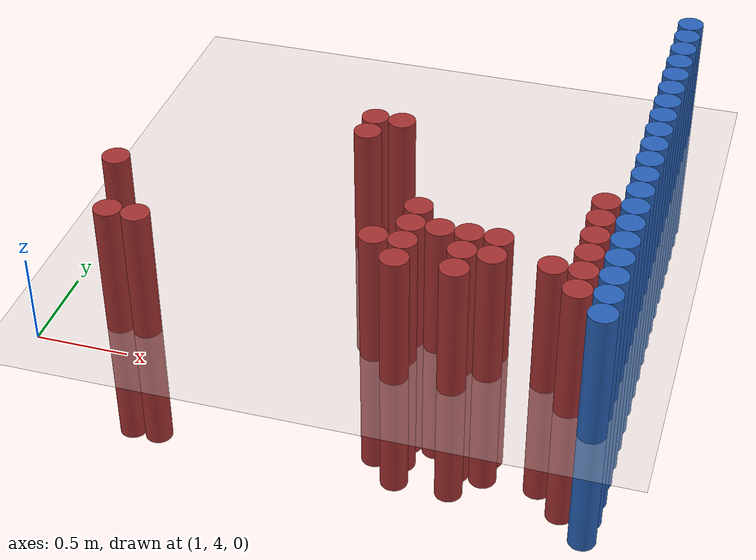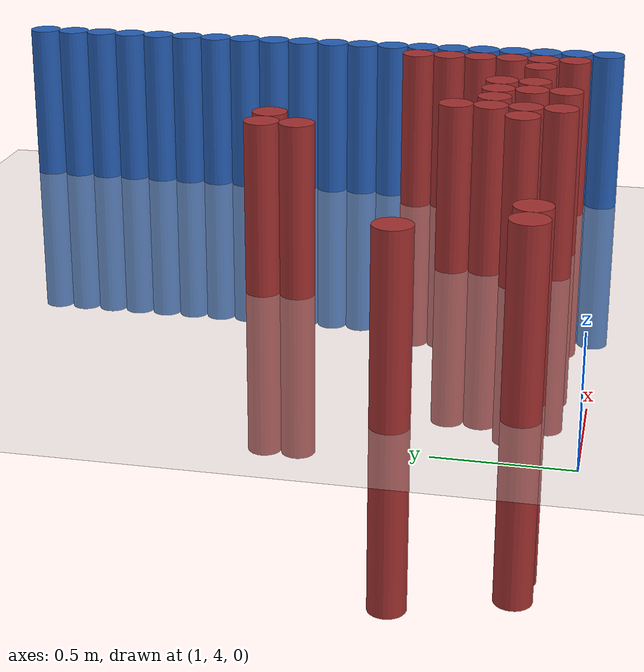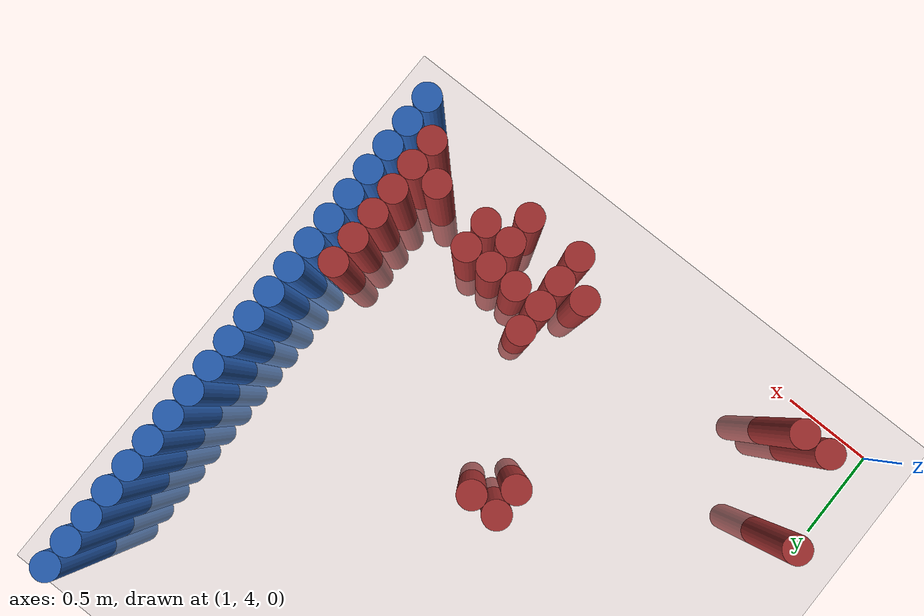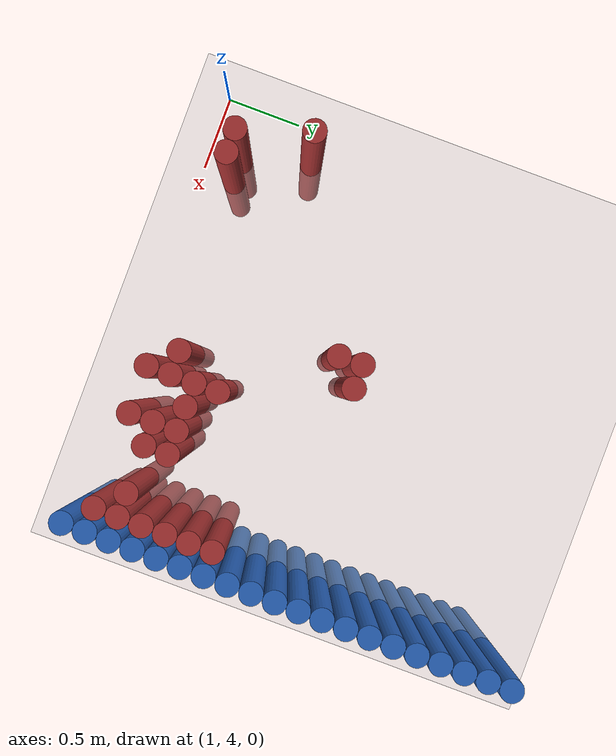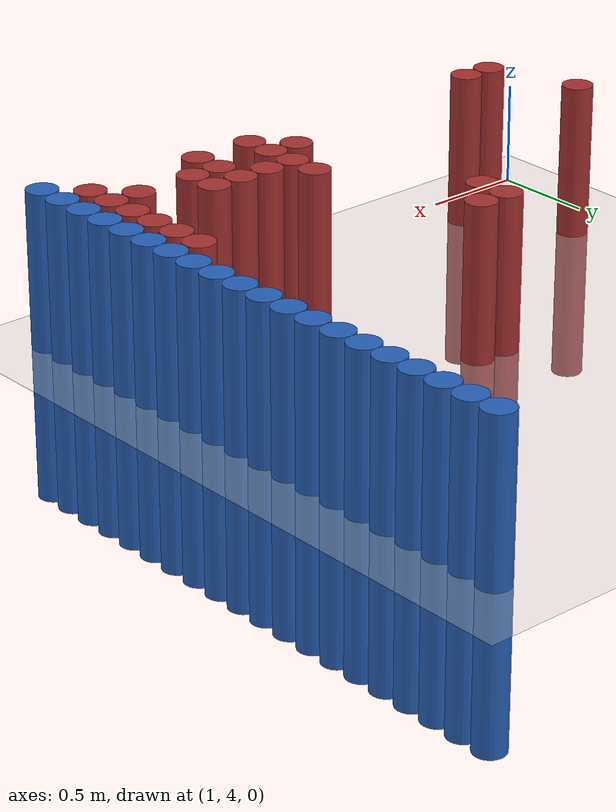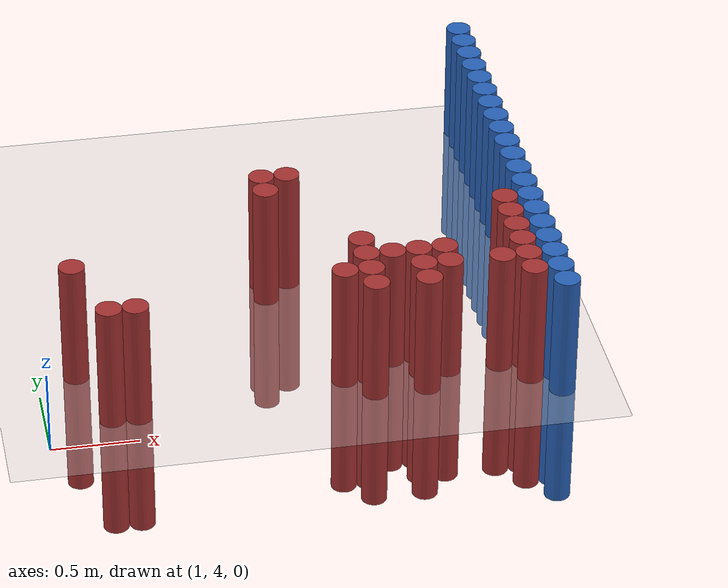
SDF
<sdf version="1.6">
 <world name="default">
  <model name="ground_plane">
   <static>1</static>
   <link name="link">
    <collision name="collision">
     <geometry><plane><normal>0 0 1</normal><size>100 100</size></plane></geometry>
     <surface><friction><ode><mu>100</mu><mu2>50</mu2></ode></friction></surface>
    </collision>
    <visual name="visual">
     <cast_shadows>0</cast_shadows>
     <geometry><plane><normal>0 0 1</normal><size>100 100</size></plane></geometry>
     <material>
      <script><uri>file://media/materials/scripts/gazebo.material</uri><name>Gazebo/Grey</name></script>
     </material>
    </visual>
   </link>
  </model>
  <model name="unit_cylinder_170">
   <static>1</static>
   <pose>3.925000 4.225000 0.000000 0.000000 0.000000 0.000000</pose>
   <link name="link">
    <inertial>
     <mass>1</mass>
     <inertia><ixx>0.145833</ixx><ixy>0</ixy><ixz>0</ixz><iyy>0.145833</iyy><iyz>0</iyz><izz>0.125</izz></inertia>
    </inertial>
    <collision name="collision">
     <geometry><cylinder><radius>0.075000</radius><length>1.5</length></cylinder></geometry>
    </collision>
    <visual name="visual">
     <geometry><cylinder><radius>0.075000</radius><length>1.5</length></cylinder></geometry>
     <material>
      <ambient>0.152000 0.379000 0.720000 1</ambient>
      <diffuse>0.152000 0.379000 0.720000 1</diffuse>
     </material>
     <material>
      <script><name>Gazebo/Grey</name><uri>file://media/materials/scripts/gazebo.material</uri></script>
     </material>
    </visual>
   </link>
  </model>
  <model name="unit_cylinder_172">
   <static>1</static>
   <pose>3.925000 4.375000 0.000000 0.000000 0.000000 0.000000</pose>
   <link name="link">
    <inertial>
     <mass>1</mass>
     <inertia><ixx>0.145833</ixx><ixy>0</ixy><ixz>0</ixz><iyy>0.145833</iyy><iyz>0</iyz><izz>0.125</izz></inertia>
    </inertial>
    <collision name="collision">
     <geometry><cylinder><radius>0.075000</radius><length>1.5</length></cylinder></geometry>
    </collision>
    <visual name="visual">
     <geometry><cylinder><radius>0.075000</radius><length>1.5</length></cylinder></geometry>
     <material>
      <ambient>0.152000 0.379000 0.720000 1</ambient>
      <diffuse>0.152000 0.379000 0.720000 1</diffuse>
     </material>
     <material>
      <script><name>Gazebo/Grey</name><uri>file://media/materials/scripts/gazebo.material</uri></script>
     </material>
    </visual>
   </link>
  </model>
  <model name="unit_cylinder_174">
   <static>1</static>
   <pose>3.925000 4.525000 0.000000 0.000000 0.000000 0.000000</pose>
   <link name="link">
    <inertial>
     <mass>1</mass>
     <inertia><ixx>0.145833</ixx><ixy>0</ixy><ixz>0</ixz><iyy>0.145833</iyy><iyz>0</iyz><izz>0.125</izz></inertia>
    </inertial>
    <collision name="collision">
     <geometry><cylinder><radius>0.075000</radius><length>1.5</length></cylinder></geometry>
    </collision>
    <visual name="visual">
     <geometry><cylinder><radius>0.075000</radius><length>1.5</length></cylinder></geometry>
     <material>
      <ambient>0.152000 0.379000 0.720000 1</ambient>
      <diffuse>0.152000 0.379000 0.720000 1</diffuse>
     </material>
     <material>
      <script><name>Gazebo/Grey</name><uri>file://media/materials/scripts/gazebo.material</uri></script>
     </material>
    </visual>
   </link>
  </model>
  <model name="unit_cylinder_176">
   <static>1</static>
   <pose>3.925000 4.675000 0.000000 0.000000 0.000000 0.000000</pose>
   <link name="link">
    <inertial>
     <mass>1</mass>
     <inertia><ixx>0.145833</ixx><ixy>0</ixy><ixz>0</ixz><iyy>0.145833</iyy><iyz>0</iyz><izz>0.125</izz></inertia>
    </inertial>
    <collision name="collision">
     <geometry><cylinder><radius>0.075000</radius><length>1.5</length></cylinder></geometry>
    </collision>
    <visual name="visual">
     <geometry><cylinder><radius>0.075000</radius><length>1.5</length></cylinder></geometry>
     <material>
      <ambient>0.152000 0.379000 0.720000 1</ambient>
      <diffuse>0.152000 0.379000 0.720000 1</diffuse>
     </material>
     <material>
      <script><name>Gazebo/Grey</name><uri>file://media/materials/scripts/gazebo.material</uri></script>
     </material>
    </visual>
   </link>
  </model>
  <model name="unit_cylinder_178">
   <static>1</static>
   <pose>3.925000 4.825000 0.000000 0.000000 0.000000 0.000000</pose>
   <link name="link">
    <inertial>
     <mass>1</mass>
     <inertia><ixx>0.145833</ixx><ixy>0</ixy><ixz>0</ixz><iyy>0.145833</iyy><iyz>0</iyz><izz>0.125</izz></inertia>
    </inertial>
    <collision name="collision">
     <geometry><cylinder><radius>0.075000</radius><length>1.5</length></cylinder></geometry>
    </collision>
    <visual name="visual">
     <geometry><cylinder><radius>0.075000</radius><length>1.5</length></cylinder></geometry>
     <material>
      <ambient>0.152000 0.379000 0.720000 1</ambient>
      <diffuse>0.152000 0.379000 0.720000 1</diffuse>
     </material>
     <material>
      <script><name>Gazebo/Grey</name><uri>file://media/materials/scripts/gazebo.material</uri></script>
     </material>
    </visual>
   </link>
  </model>
  <model name="unit_cylinder_180">
   <static>1</static>
   <pose>3.925000 4.975000 0.000000 0.000000 0.000000 0.000000</pose>
   <link name="link">
    <inertial>
     <mass>1</mass>
     <inertia><ixx>0.145833</ixx><ixy>0</ixy><ixz>0</ixz><iyy>0.145833</iyy><iyz>0</iyz><izz>0.125</izz></inertia>
    </inertial>
    <collision name="collision">
     <geometry><cylinder><radius>0.075000</radius><length>1.5</length></cylinder></geometry>
    </collision>
    <visual name="visual">
     <geometry><cylinder><radius>0.075000</radius><length>1.5</length></cylinder></geometry>
     <material>
      <ambient>0.152000 0.379000 0.720000 1</ambient>
      <diffuse>0.152000 0.379000 0.720000 1</diffuse>
     </material>
     <material>
      <script><name>Gazebo/Grey</name><uri>file://media/materials/scripts/gazebo.material</uri></script>
     </material>
    </visual>
   </link>
  </model>
  <model name="unit_cylinder_182">
   <static>1</static>
   <pose>3.925000 5.125000 0.000000 0.000000 0.000000 0.000000</pose>
   <link name="link">
    <inertial>
     <mass>1</mass>
     <inertia><ixx>0.145833</ixx><ixy>0</ixy><ixz>0</ixz><iyy>0.145833</iyy><iyz>0</iyz><izz>0.125</izz></inertia>
    </inertial>
    <collision name="collision">
     <geometry><cylinder><radius>0.075000</radius><length>1.5</length></cylinder></geometry>
    </collision>
    <visual name="visual">
     <geometry><cylinder><radius>0.075000</radius><length>1.5</length></cylinder></geometry>
     <material>
      <ambient>0.152000 0.379000 0.720000 1</ambient>
      <diffuse>0.152000 0.379000 0.720000 1</diffuse>
     </material>
     <material>
      <script><name>Gazebo/Grey</name><uri>file://media/materials/scripts/gazebo.material</uri></script>
     </material>
    </visual>
   </link>
  </model>
  <model name="unit_cylinder_184">
   <static>1</static>
   <pose>3.925000 5.275000 0.000000 0.000000 0.000000 0.000000</pose>
   <link name="link">
    <inertial>
     <mass>1</mass>
     <inertia><ixx>0.145833</ixx><ixy>0</ixy><ixz>0</ixz><iyy>0.145833</iyy><iyz>0</iyz><izz>0.125</izz></inertia>
    </inertial>
    <collision name="collision">
     <geometry><cylinder><radius>0.075000</radius><length>1.5</length></cylinder></geometry>
    </collision>
    <visual name="visual">
     <geometry><cylinder><radius>0.075000</radius><length>1.5</length></cylinder></geometry>
     <material>
      <ambient>0.152000 0.379000 0.720000 1</ambient>
      <diffuse>0.152000 0.379000 0.720000 1</diffuse>
     </material>
     <material>
      <script><name>Gazebo/Grey</name><uri>file://media/materials/scripts/gazebo.material</uri></script>
     </material>
    </visual>
   </link>
  </model>
  <model name="unit_cylinder_186">
   <static>1</static>
   <pose>3.925000 5.425000 0.000000 0.000000 0.000000 0.000000</pose>
   <link name="link">
    <inertial>
     <mass>1</mass>
     <inertia><ixx>0.145833</ixx><ixy>0</ixy><ixz>0</ixz><iyy>0.145833</iyy><iyz>0</iyz><izz>0.125</izz></inertia>
    </inertial>
    <collision name="collision">
     <geometry><cylinder><radius>0.075000</radius><length>1.5</length></cylinder></geometry>
    </collision>
    <visual name="visual">
     <geometry><cylinder><radius>0.075000</radius><length>1.5</length></cylinder></geometry>
     <material>
      <ambient>0.152000 0.379000 0.720000 1</ambient>
      <diffuse>0.152000 0.379000 0.720000 1</diffuse>
     </material>
     <material>
      <script><name>Gazebo/Grey</name><uri>file://media/materials/scripts/gazebo.material</uri></script>
     </material>
    </visual>
   </link>
  </model>
  <model name="unit_cylinder_188">
   <static>1</static>
   <pose>3.925000 5.575000 0.000000 0.000000 0.000000 0.000000</pose>
   <link name="link">
    <inertial>
     <mass>1</mass>
     <inertia><ixx>0.145833</ixx><ixy>0</ixy><ixz>0</ixz><iyy>0.145833</iyy><iyz>0</iyz><izz>0.125</izz></inertia>
    </inertial>
    <collision name="collision">
     <geometry><cylinder><radius>0.075000</radius><length>1.5</length></cylinder></geometry>
    </collision>
    <visual name="visual">
     <geometry><cylinder><radius>0.075000</radius><length>1.5</length></cylinder></geometry>
     <material>
      <ambient>0.152000 0.379000 0.720000 1</ambient>
      <diffuse>0.152000 0.379000 0.720000 1</diffuse>
     </material>
     <material>
      <script><name>Gazebo/Grey</name><uri>file://media/materials/scripts/gazebo.material</uri></script>
     </material>
    </visual>
   </link>
  </model>
  <model name="unit_cylinder_190">
   <static>1</static>
   <pose>3.925000 5.725000 0.000000 0.000000 0.000000 0.000000</pose>
   <link name="link">
    <inertial>
     <mass>1</mass>
     <inertia><ixx>0.145833</ixx><ixy>0</ixy><ixz>0</ixz><iyy>0.145833</iyy><iyz>0</iyz><izz>0.125</izz></inertia>
    </inertial>
    <collision name="collision">
     <geometry><cylinder><radius>0.075000</radius><length>1.5</length></cylinder></geometry>
    </collision>
    <visual name="visual">
     <geometry><cylinder><radius>0.075000</radius><length>1.5</length></cylinder></geometry>
     <material>
      <ambient>0.152000 0.379000 0.720000 1</ambient>
      <diffuse>0.152000 0.379000 0.720000 1</diffuse>
     </material>
     <material>
      <script><name>Gazebo/Grey</name><uri>file://media/materials/scripts/gazebo.material</uri></script>
     </material>
    </visual>
   </link>
  </model>
  <model name="unit_cylinder_192">
   <static>1</static>
   <pose>3.925000 5.875000 0.000000 0.000000 0.000000 0.000000</pose>
   <link name="link">
    <inertial>
     <mass>1</mass>
     <inertia><ixx>0.145833</ixx><ixy>0</ixy><ixz>0</ixz><iyy>0.145833</iyy><iyz>0</iyz><izz>0.125</izz></inertia>
    </inertial>
    <collision name="collision">
     <geometry><cylinder><radius>0.075000</radius><length>1.5</length></cylinder></geometry>
    </collision>
    <visual name="visual">
     <geometry><cylinder><radius>0.075000</radius><length>1.5</length></cylinder></geometry>
     <material>
      <ambient>0.152000 0.379000 0.720000 1</ambient>
      <diffuse>0.152000 0.379000 0.720000 1</diffuse>
     </material>
     <material>
      <script><name>Gazebo/Grey</name><uri>file://media/materials/scripts/gazebo.material</uri></script>
     </material>
    </visual>
   </link>
  </model>
  <model name="unit_cylinder_194">
   <static>1</static>
   <pose>3.925000 6.025000 0.000000 0.000000 0.000000 0.000000</pose>
   <link name="link">
    <inertial>
     <mass>1</mass>
     <inertia><ixx>0.145833</ixx><ixy>0</ixy><ixz>0</ixz><iyy>0.145833</iyy><iyz>0</iyz><izz>0.125</izz></inertia>
    </inertial>
    <collision name="collision">
     <geometry><cylinder><radius>0.075000</radius><length>1.5</length></cylinder></geometry>
    </collision>
    <visual name="visual">
     <geometry><cylinder><radius>0.075000</radius><length>1.5</length></cylinder></geometry>
     <material>
      <ambient>0.152000 0.379000 0.720000 1</ambient>
      <diffuse>0.152000 0.379000 0.720000 1</diffuse>
     </material>
     <material>
      <script><name>Gazebo/Grey</name><uri>file://media/materials/scripts/gazebo.material</uri></script>
     </material>
    </visual>
   </link>
  </model>
  <model name="unit_cylinder_196">
   <static>1</static>
   <pose>3.925000 6.175000 0.000000 0.000000 0.000000 0.000000</pose>
   <link name="link">
    <inertial>
     <mass>1</mass>
     <inertia><ixx>0.145833</ixx><ixy>0</ixy><ixz>0</ixz><iyy>0.145833</iyy><iyz>0</iyz><izz>0.125</izz></inertia>
    </inertial>
    <collision name="collision">
     <geometry><cylinder><radius>0.075000</radius><length>1.5</length></cylinder></geometry>
    </collision>
    <visual name="visual">
     <geometry><cylinder><radius>0.075000</radius><length>1.5</length></cylinder></geometry>
     <material>
      <ambient>0.152000 0.379000 0.720000 1</ambient>
      <diffuse>0.152000 0.379000 0.720000 1</diffuse>
     </material>
     <material>
      <script><name>Gazebo/Grey</name><uri>file://media/materials/scripts/gazebo.material</uri></script>
     </material>
    </visual>
   </link>
  </model>
  <model name="unit_cylinder_198">
   <static>1</static>
   <pose>3.925000 6.325000 0.000000 0.000000 0.000000 0.000000</pose>
   <link name="link">
    <inertial>
     <mass>1</mass>
     <inertia><ixx>0.145833</ixx><ixy>0</ixy><ixz>0</ixz><iyy>0.145833</iyy><iyz>0</iyz><izz>0.125</izz></inertia>
    </inertial>
    <collision name="collision">
     <geometry><cylinder><radius>0.075000</radius><length>1.5</length></cylinder></geometry>
    </collision>
    <visual name="visual">
     <geometry><cylinder><radius>0.075000</radius><length>1.5</length></cylinder></geometry>
     <material>
      <ambient>0.152000 0.379000 0.720000 1</ambient>
      <diffuse>0.152000 0.379000 0.720000 1</diffuse>
     </material>
     <material>
      <script><name>Gazebo/Grey</name><uri>file://media/materials/scripts/gazebo.material</uri></script>
     </material>
    </visual>
   </link>
  </model>
  <model name="unit_cylinder_200">
   <static>1</static>
   <pose>3.925000 6.475000 0.000000 0.000000 0.000000 0.000000</pose>
   <link name="link">
    <inertial>
     <mass>1</mass>
     <inertia><ixx>0.145833</ixx><ixy>0</ixy><ixz>0</ixz><iyy>0.145833</iyy><iyz>0</iyz><izz>0.125</izz></inertia>
    </inertial>
    <collision name="collision">
     <geometry><cylinder><radius>0.075000</radius><length>1.5</length></cylinder></geometry>
    </collision>
    <visual name="visual">
     <geometry><cylinder><radius>0.075000</radius><length>1.5</length></cylinder></geometry>
     <material>
      <ambient>0.152000 0.379000 0.720000 1</ambient>
      <diffuse>0.152000 0.379000 0.720000 1</diffuse>
     </material>
     <material>
      <script><name>Gazebo/Grey</name><uri>file://media/materials/scripts/gazebo.material</uri></script>
     </material>
    </visual>
   </link>
  </model>
  <model name="unit_cylinder_202">
   <static>1</static>
   <pose>3.925000 6.625000 0.000000 0.000000 0.000000 0.000000</pose>
   <link name="link">
    <inertial>
     <mass>1</mass>
     <inertia><ixx>0.145833</ixx><ixy>0</ixy><ixz>0</ixz><iyy>0.145833</iyy><iyz>0</iyz><izz>0.125</izz></inertia>
    </inertial>
    <collision name="collision">
     <geometry><cylinder><radius>0.075000</radius><length>1.5</length></cylinder></geometry>
    </collision>
    <visual name="visual">
     <geometry><cylinder><radius>0.075000</radius><length>1.5</length></cylinder></geometry>
     <material>
      <ambient>0.152000 0.379000 0.720000 1</ambient>
      <diffuse>0.152000 0.379000 0.720000 1</diffuse>
     </material>
     <material>
      <script><name>Gazebo/Grey</name><uri>file://media/materials/scripts/gazebo.material</uri></script>
     </material>
    </visual>
   </link>
  </model>
  <model name="unit_cylinder_204">
   <static>1</static>
   <pose>3.925000 6.775000 0.000000 0.000000 0.000000 0.000000</pose>
   <link name="link">
    <inertial>
     <mass>1</mass>
     <inertia><ixx>0.145833</ixx><ixy>0</ixy><ixz>0</ixz><iyy>0.145833</iyy><iyz>0</iyz><izz>0.125</izz></inertia>
    </inertial>
    <collision name="collision">
     <geometry><cylinder><radius>0.075000</radius><length>1.5</length></cylinder></geometry>
    </collision>
    <visual name="visual">
     <geometry><cylinder><radius>0.075000</radius><length>1.5</length></cylinder></geometry>
     <material>
      <ambient>0.152000 0.379000 0.720000 1</ambient>
      <diffuse>0.152000 0.379000 0.720000 1</diffuse>
     </material>
     <material>
      <script><name>Gazebo/Grey</name><uri>file://media/materials/scripts/gazebo.material</uri></script>
     </material>
    </visual>
   </link>
  </model>
  <model name="unit_cylinder_206">
   <static>1</static>
   <pose>3.925000 6.925000 0.000000 0.000000 0.000000 0.000000</pose>
   <link name="link">
    <inertial>
     <mass>1</mass>
     <inertia><ixx>0.145833</ixx><ixy>0</ixy><ixz>0</ixz><iyy>0.145833</iyy><iyz>0</iyz><izz>0.125</izz></inertia>
    </inertial>
    <collision name="collision">
     <geometry><cylinder><radius>0.075000</radius><length>1.5</length></cylinder></geometry>
    </collision>
    <visual name="visual">
     <geometry><cylinder><radius>0.075000</radius><length>1.5</length></cylinder></geometry>
     <material>
      <ambient>0.152000 0.379000 0.720000 1</ambient>
      <diffuse>0.152000 0.379000 0.720000 1</diffuse>
     </material>
     <material>
      <script><name>Gazebo/Grey</name><uri>file://media/materials/scripts/gazebo.material</uri></script>
     </material>
    </visual>
   </link>
  </model>
  <model name="unit_cylinder_418">
   <static>1</static>
   <pose>1.225000 4.675000 0.000000 0.000000 0.000000 0.000000</pose>
   <link name="link">
    <inertial>
     <mass>1</mass>
     <inertia><ixx>0.145833</ixx><ixy>0</ixy><ixz>0</ixz><iyy>0.145833</iyy><iyz>0</iyz><izz>0.125</izz></inertia>
    </inertial>
    <collision name="collision">
     <geometry><cylinder><radius>0.075000</radius><length>1.5</length></cylinder></geometry>
    </collision>
    <visual name="visual">
     <geometry><cylinder><radius>0.075000</radius><length>1.5</length></cylinder></geometry>
     <material>
      <ambient>0.648000 0.192000 0.192000 1</ambient>
      <diffuse>0.648000 0.192000 0.192000 1</diffuse>
     </material>
     <material>
      <script><name>Gazebo/Grey</name><uri>file://media/materials/scripts/gazebo.material</uri></script>
     </material>
    </visual>
   </link>
  </model>
  <model name="unit_cylinder_421">
   <static>1</static>
   <pose>1.375000 4.225000 0.000000 0.000000 0.000000 0.000000</pose>
   <link name="link">
    <inertial>
     <mass>1</mass>
     <inertia><ixx>0.145833</ixx><ixy>0</ixy><ixz>0</ixz><iyy>0.145833</iyy><iyz>0</iyz><izz>0.125</izz></inertia>
    </inertial>
    <collision name="collision">
     <geometry><cylinder><radius>0.075000</radius><length>1.5</length></cylinder></geometry>
    </collision>
    <visual name="visual">
     <geometry><cylinder><radius>0.075000</radius><length>1.5</length></cylinder></geometry>
     <material>
      <ambient>0.648000 0.192000 0.192000 1</ambient>
      <diffuse>0.648000 0.192000 0.192000 1</diffuse>
     </material>
     <material>
      <script><name>Gazebo/Grey</name><uri>file://media/materials/scripts/gazebo.material</uri></script>
     </material>
    </visual>
   </link>
  </model>
  <model name="unit_cylinder_426">
   <static>1</static>
   <pose>1.525000 4.225000 0.000000 0.000000 0.000000 0.000000</pose>
   <link name="link">
    <inertial>
     <mass>1</mass>
     <inertia><ixx>0.145833</ixx><ixy>0</ixy><ixz>0</ixz><iyy>0.145833</iyy><iyz>0</iyz><izz>0.125</izz></inertia>
    </inertial>
    <collision name="collision">
     <geometry><cylinder><radius>0.075000</radius><length>1.5</length></cylinder></geometry>
    </collision>
    <visual name="visual">
     <geometry><cylinder><radius>0.075000</radius><length>1.5</length></cylinder></geometry>
     <material>
      <ambient>0.648000 0.192000 0.192000 1</ambient>
      <diffuse>0.648000 0.192000 0.192000 1</diffuse>
     </material>
     <material>
      <script><name>Gazebo/Grey</name><uri>file://media/materials/scripts/gazebo.material</uri></script>
     </material>
    </visual>
   </link>
  </model>
  <model name="unit_cylinder_462">
   <static>1</static>
   <pose>2.425000 5.275000 0.000000 0.000000 0.000000 0.000000</pose>
   <link name="link">
    <inertial>
     <mass>1</mass>
     <inertia><ixx>0.145833</ixx><ixy>0</ixy><ixz>0</ixz><iyy>0.145833</iyy><iyz>0</iyz><izz>0.125</izz></inertia>
    </inertial>
    <collision name="collision">
     <geometry><cylinder><radius>0.075000</radius><length>1.5</length></cylinder></geometry>
    </collision>
    <visual name="visual">
     <geometry><cylinder><radius>0.075000</radius><length>1.5</length></cylinder></geometry>
     <material>
      <ambient>0.648000 0.192000 0.192000 1</ambient>
      <diffuse>0.648000 0.192000 0.192000 1</diffuse>
     </material>
     <material>
      <script><name>Gazebo/Grey</name><uri>file://media/materials/scripts/gazebo.material</uri></script>
     </material>
    </visual>
   </link>
  </model>
  <model name="unit_cylinder_463">
   <static>1</static>
   <pose>2.425000 5.425000 0.000000 0.000000 0.000000 0.000000</pose>
   <link name="link">
    <inertial>
     <mass>1</mass>
     <inertia><ixx>0.145833</ixx><ixy>0</ixy><ixz>0</ixz><iyy>0.145833</iyy><iyz>0</iyz><izz>0.125</izz></inertia>
    </inertial>
    <collision name="collision">
     <geometry><cylinder><radius>0.075000</radius><length>1.5</length></cylinder></geometry>
    </collision>
    <visual name="visual">
     <geometry><cylinder><radius>0.075000</radius><length>1.5</length></cylinder></geometry>
     <material>
      <ambient>0.648000 0.192000 0.192000 1</ambient>
      <diffuse>0.648000 0.192000 0.192000 1</diffuse>
     </material>
     <material>
      <script><name>Gazebo/Grey</name><uri>file://media/materials/scripts/gazebo.material</uri></script>
     </material>
    </visual>
   </link>
  </model>
  <model name="unit_cylinder_470">
   <static>1</static>
   <pose>2.575000 5.425000 0.000000 0.000000 0.000000 0.000000</pose>
   <link name="link">
    <inertial>
     <mass>1</mass>
     <inertia><ixx>0.145833</ixx><ixy>0</ixy><ixz>0</ixz><iyy>0.145833</iyy><iyz>0</iyz><izz>0.125</izz></inertia>
    </inertial>
    <collision name="collision">
     <geometry><cylinder><radius>0.075000</radius><length>1.5</length></cylinder></geometry>
    </collision>
    <visual name="visual">
     <geometry><cylinder><radius>0.075000</radius><length>1.5</length></cylinder></geometry>
     <material>
      <ambient>0.648000 0.192000 0.192000 1</ambient>
      <diffuse>0.648000 0.192000 0.192000 1</diffuse>
     </material>
     <material>
      <script><name>Gazebo/Grey</name><uri>file://media/materials/scripts/gazebo.material</uri></script>
     </material>
    </visual>
   </link>
  </model>
  <model name="unit_cylinder_479">
   <static>1</static>
   <pose>2.725000 4.375000 0.000000 0.000000 0.000000 0.000000</pose>
   <link name="link">
    <inertial>
     <mass>1</mass>
     <inertia><ixx>0.145833</ixx><ixy>0</ixy><ixz>0</ixz><iyy>0.145833</iyy><iyz>0</iyz><izz>0.125</izz></inertia>
    </inertial>
    <collision name="collision">
     <geometry><cylinder><radius>0.075000</radius><length>1.5</length></cylinder></geometry>
    </collision>
    <visual name="visual">
     <geometry><cylinder><radius>0.075000</radius><length>1.5</length></cylinder></geometry>
     <material>
      <ambient>0.648000 0.192000 0.192000 1</ambient>
      <diffuse>0.648000 0.192000 0.192000 1</diffuse>
     </material>
     <material>
      <script><name>Gazebo/Grey</name><uri>file://media/materials/scripts/gazebo.material</uri></script>
     </material>
    </visual>
   </link>
  </model>
  <model name="unit_cylinder_490">
   <static>1</static>
   <pose>2.875000 4.225000 0.000000 0.000000 0.000000 0.000000</pose>
   <link name="link">
    <inertial>
     <mass>1</mass>
     <inertia><ixx>0.145833</ixx><ixy>0</ixy><ixz>0</ixz><iyy>0.145833</iyy><iyz>0</iyz><izz>0.125</izz></inertia>
    </inertial>
    <collision name="collision">
     <geometry><cylinder><radius>0.075000</radius><length>1.5</length></cylinder></geometry>
    </collision>
    <visual name="visual">
     <geometry><cylinder><radius>0.075000</radius><length>1.5</length></cylinder></geometry>
     <material>
      <ambient>0.648000 0.192000 0.192000 1</ambient>
      <diffuse>0.648000 0.192000 0.192000 1</diffuse>
     </material>
     <material>
      <script><name>Gazebo/Grey</name><uri>file://media/materials/scripts/gazebo.material</uri></script>
     </material>
    </visual>
   </link>
  </model>
  <model name="unit_cylinder_491">
   <static>1</static>
   <pose>2.875000 4.375000 0.000000 0.000000 0.000000 0.000000</pose>
   <link name="link">
    <inertial>
     <mass>1</mass>
     <inertia><ixx>0.145833</ixx><ixy>0</ixy><ixz>0</ixz><iyy>0.145833</iyy><iyz>0</iyz><izz>0.125</izz></inertia>
    </inertial>
    <collision name="collision">
     <geometry><cylinder><radius>0.075000</radius><length>1.5</length></cylinder></geometry>
    </collision>
    <visual name="visual">
     <geometry><cylinder><radius>0.075000</radius><length>1.5</length></cylinder></geometry>
     <material>
      <ambient>0.648000 0.192000 0.192000 1</ambient>
      <diffuse>0.648000 0.192000 0.192000 1</diffuse>
     </material>
     <material>
      <script><name>Gazebo/Grey</name><uri>file://media/materials/scripts/gazebo.material</uri></script>
     </material>
    </visual>
   </link>
  </model>
  <model name="unit_cylinder_492">
   <static>1</static>
   <pose>2.875000 4.525000 0.000000 0.000000 0.000000 0.000000</pose>
   <link name="link">
    <inertial>
     <mass>1</mass>
     <inertia><ixx>0.145833</ixx><ixy>0</ixy><ixz>0</ixz><iyy>0.145833</iyy><iyz>0</iyz><izz>0.125</izz></inertia>
    </inertial>
    <collision name="collision">
     <geometry><cylinder><radius>0.075000</radius><length>1.5</length></cylinder></geometry>
    </collision>
    <visual name="visual">
     <geometry><cylinder><radius>0.075000</radius><length>1.5</length></cylinder></geometry>
     <material>
      <ambient>0.648000 0.192000 0.192000 1</ambient>
      <diffuse>0.648000 0.192000 0.192000 1</diffuse>
     </material>
     <material>
      <script><name>Gazebo/Grey</name><uri>file://media/materials/scripts/gazebo.material</uri></script>
     </material>
    </visual>
   </link>
  </model>
  <model name="unit_cylinder_493">
   <static>1</static>
   <pose>2.875000 4.675000 0.000000 0.000000 0.000000 0.000000</pose>
   <link name="link">
    <inertial>
     <mass>1</mass>
     <inertia><ixx>0.145833</ixx><ixy>0</ixy><ixz>0</ixz><iyy>0.145833</iyy><iyz>0</iyz><izz>0.125</izz></inertia>
    </inertial>
    <collision name="collision">
     <geometry><cylinder><radius>0.075000</radius><length>1.5</length></cylinder></geometry>
    </collision>
    <visual name="visual">
     <geometry><cylinder><radius>0.075000</radius><length>1.5</length></cylinder></geometry>
     <material>
      <ambient>0.648000 0.192000 0.192000 1</ambient>
      <diffuse>0.648000 0.192000 0.192000 1</diffuse>
     </material>
     <material>
      <script><name>Gazebo/Grey</name><uri>file://media/materials/scripts/gazebo.material</uri></script>
     </material>
    </visual>
   </link>
  </model>
  <model name="unit_cylinder_504">
   <static>1</static>
   <pose>3.025000 4.525000 0.000000 0.000000 0.000000 0.000000</pose>
   <link name="link">
    <inertial>
     <mass>1</mass>
     <inertia><ixx>0.145833</ixx><ixy>0</ixy><ixz>0</ixz><iyy>0.145833</iyy><iyz>0</iyz><izz>0.125</izz></inertia>
    </inertial>
    <collision name="collision">
     <geometry><cylinder><radius>0.075000</radius><length>1.5</length></cylinder></geometry>
    </collision>
    <visual name="visual">
     <geometry><cylinder><radius>0.075000</radius><length>1.5</length></cylinder></geometry>
     <material>
      <ambient>0.648000 0.192000 0.192000 1</ambient>
      <diffuse>0.648000 0.192000 0.192000 1</diffuse>
     </material>
     <material>
      <script><name>Gazebo/Grey</name><uri>file://media/materials/scripts/gazebo.material</uri></script>
     </material>
    </visual>
   </link>
  </model>
  <model name="unit_cylinder_516">
   <static>1</static>
   <pose>3.175000 4.225000 0.000000 0.000000 0.000000 0.000000</pose>
   <link name="link">
    <inertial>
     <mass>1</mass>
     <inertia><ixx>0.145833</ixx><ixy>0</ixy><ixz>0</ixz><iyy>0.145833</iyy><iyz>0</iyz><izz>0.125</izz></inertia>
    </inertial>
    <collision name="collision">
     <geometry><cylinder><radius>0.075000</radius><length>1.5</length></cylinder></geometry>
    </collision>
    <visual name="visual">
     <geometry><cylinder><radius>0.075000</radius><length>1.5</length></cylinder></geometry>
     <material>
      <ambient>0.648000 0.192000 0.192000 1</ambient>
      <diffuse>0.648000 0.192000 0.192000 1</diffuse>
     </material>
     <material>
      <script><name>Gazebo/Grey</name><uri>file://media/materials/scripts/gazebo.material</uri></script>
     </material>
    </visual>
   </link>
  </model>
  <model name="unit_cylinder_517">
   <static>1</static>
   <pose>3.175000 4.375000 0.000000 0.000000 0.000000 0.000000</pose>
   <link name="link">
    <inertial>
     <mass>1</mass>
     <inertia><ixx>0.145833</ixx><ixy>0</ixy><ixz>0</ixz><iyy>0.145833</iyy><iyz>0</iyz><izz>0.125</izz></inertia>
    </inertial>
    <collision name="collision">
     <geometry><cylinder><radius>0.075000</radius><length>1.5</length></cylinder></geometry>
    </collision>
    <visual name="visual">
     <geometry><cylinder><radius>0.075000</radius><length>1.5</length></cylinder></geometry>
     <material>
      <ambient>0.648000 0.192000 0.192000 1</ambient>
      <diffuse>0.648000 0.192000 0.192000 1</diffuse>
     </material>
     <material>
      <script><name>Gazebo/Grey</name><uri>file://media/materials/scripts/gazebo.material</uri></script>
     </material>
    </visual>
   </link>
  </model>
  <model name="unit_cylinder_518">
   <static>1</static>
   <pose>3.175000 4.525000 0.000000 0.000000 0.000000 0.000000</pose>
   <link name="link">
    <inertial>
     <mass>1</mass>
     <inertia><ixx>0.145833</ixx><ixy>0</ixy><ixz>0</ixz><iyy>0.145833</iyy><iyz>0</iyz><izz>0.125</izz></inertia>
    </inertial>
    <collision name="collision">
     <geometry><cylinder><radius>0.075000</radius><length>1.5</length></cylinder></geometry>
    </collision>
    <visual name="visual">
     <geometry><cylinder><radius>0.075000</radius><length>1.5</length></cylinder></geometry>
     <material>
      <ambient>0.648000 0.192000 0.192000 1</ambient>
      <diffuse>0.648000 0.192000 0.192000 1</diffuse>
     </material>
     <material>
      <script><name>Gazebo/Grey</name><uri>file://media/materials/scripts/gazebo.material</uri></script>
     </material>
    </visual>
   </link>
  </model>
  <model name="unit_cylinder_525">
   <static>1</static>
   <pose>3.325000 4.375000 0.000000 0.000000 0.000000 0.000000</pose>
   <link name="link">
    <inertial>
     <mass>1</mass>
     <inertia><ixx>0.145833</ixx><ixy>0</ixy><ixz>0</ixz><iyy>0.145833</iyy><iyz>0</iyz><izz>0.125</izz></inertia>
    </inertial>
    <collision name="collision">
     <geometry><cylinder><radius>0.075000</radius><length>1.5</length></cylinder></geometry>
    </collision>
    <visual name="visual">
     <geometry><cylinder><radius>0.075000</radius><length>1.5</length></cylinder></geometry>
     <material>
      <ambient>0.648000 0.192000 0.192000 1</ambient>
      <diffuse>0.648000 0.192000 0.192000 1</diffuse>
     </material>
     <material>
      <script><name>Gazebo/Grey</name><uri>file://media/materials/scripts/gazebo.material</uri></script>
     </material>
    </visual>
   </link>
  </model>
  <model name="unit_cylinder_526">
   <static>1</static>
   <pose>3.325000 4.525000 0.000000 0.000000 0.000000 0.000000</pose>
   <link name="link">
    <inertial>
     <mass>1</mass>
     <inertia><ixx>0.145833</ixx><ixy>0</ixy><ixz>0</ixz><iyy>0.145833</iyy><iyz>0</iyz><izz>0.125</izz></inertia>
    </inertial>
    <collision name="collision">
     <geometry><cylinder><radius>0.075000</radius><length>1.5</length></cylinder></geometry>
    </collision>
    <visual name="visual">
     <geometry><cylinder><radius>0.075000</radius><length>1.5</length></cylinder></geometry>
     <material>
      <ambient>0.648000 0.192000 0.192000 1</ambient>
      <diffuse>0.648000 0.192000 0.192000 1</diffuse>
     </material>
     <material>
      <script><name>Gazebo/Grey</name><uri>file://media/materials/scripts/gazebo.material</uri></script>
     </material>
    </visual>
   </link>
  </model>
  <model name="unit_cylinder_543">
   <static>1</static>
   <pose>3.625000 4.375000 0.000000 0.000000 0.000000 0.000000</pose>
   <link name="link">
    <inertial>
     <mass>1</mass>
     <inertia><ixx>0.145833</ixx><ixy>0</ixy><ixz>0</ixz><iyy>0.145833</iyy><iyz>0</iyz><izz>0.125</izz></inertia>
    </inertial>
    <collision name="collision">
     <geometry><cylinder><radius>0.075000</radius><length>1.5</length></cylinder></geometry>
    </collision>
    <visual name="visual">
     <geometry><cylinder><radius>0.075000</radius><length>1.5</length></cylinder></geometry>
     <material>
      <ambient>0.648000 0.192000 0.192000 1</ambient>
      <diffuse>0.648000 0.192000 0.192000 1</diffuse>
     </material>
     <material>
      <script><name>Gazebo/Grey</name><uri>file://media/materials/scripts/gazebo.material</uri></script>
     </material>
    </visual>
   </link>
  </model>
  <model name="unit_cylinder_569">
   <static>1</static>
   <pose>3.775000 4.225000 0.000000 0.000000 0.000000 0.000000</pose>
   <link name="link">
    <inertial>
     <mass>1</mass>
     <inertia><ixx>0.145833</ixx><ixy>0</ixy><ixz>0</ixz><iyy>0.145833</iyy><iyz>0</iyz><izz>0.125</izz></inertia>
    </inertial>
    <collision name="collision">
     <geometry><cylinder><radius>0.075000</radius><length>1.5</length></cylinder></geometry>
    </collision>
    <visual name="visual">
     <geometry><cylinder><radius>0.075000</radius><length>1.5</length></cylinder></geometry>
     <material>
      <ambient>0.648000 0.192000 0.192000 1</ambient>
      <diffuse>0.648000 0.192000 0.192000 1</diffuse>
     </material>
     <material>
      <script><name>Gazebo/Grey</name><uri>file://media/materials/scripts/gazebo.material</uri></script>
     </material>
    </visual>
   </link>
  </model>
  <model name="unit_cylinder_570">
   <static>1</static>
   <pose>3.775000 4.375000 0.000000 0.000000 0.000000 0.000000</pose>
   <link name="link">
    <inertial>
     <mass>1</mass>
     <inertia><ixx>0.145833</ixx><ixy>0</ixy><ixz>0</ixz><iyy>0.145833</iyy><iyz>0</iyz><izz>0.125</izz></inertia>
    </inertial>
    <collision name="collision">
     <geometry><cylinder><radius>0.075000</radius><length>1.5</length></cylinder></geometry>
    </collision>
    <visual name="visual">
     <geometry><cylinder><radius>0.075000</radius><length>1.5</length></cylinder></geometry>
     <material>
      <ambient>0.648000 0.192000 0.192000 1</ambient>
      <diffuse>0.648000 0.192000 0.192000 1</diffuse>
     </material>
     <material>
      <script><name>Gazebo/Grey</name><uri>file://media/materials/scripts/gazebo.material</uri></script>
     </material>
    </visual>
   </link>
  </model>
  <model name="unit_cylinder_571">
   <static>1</static>
   <pose>3.775000 4.525000 0.000000 0.000000 0.000000 0.000000</pose>
   <link name="link">
    <inertial>
     <mass>1</mass>
     <inertia><ixx>0.145833</ixx><ixy>0</ixy><ixz>0</ixz><iyy>0.145833</iyy><iyz>0</iyz><izz>0.125</izz></inertia>
    </inertial>
    <collision name="collision">
     <geometry><cylinder><radius>0.075000</radius><length>1.5</length></cylinder></geometry>
    </collision>
    <visual name="visual">
     <geometry><cylinder><radius>0.075000</radius><length>1.5</length></cylinder></geometry>
     <material>
      <ambient>0.648000 0.192000 0.192000 1</ambient>
      <diffuse>0.648000 0.192000 0.192000 1</diffuse>
     </material>
     <material>
      <script><name>Gazebo/Grey</name><uri>file://media/materials/scripts/gazebo.material</uri></script>
     </material>
    </visual>
   </link>
  </model>
  <model name="unit_cylinder_572">
   <static>1</static>
   <pose>3.775000 4.675000 0.000000 0.000000 0.000000 0.000000</pose>
   <link name="link">
    <inertial>
     <mass>1</mass>
     <inertia><ixx>0.145833</ixx><ixy>0</ixy><ixz>0</ixz><iyy>0.145833</iyy><iyz>0</iyz><izz>0.125</izz></inertia>
    </inertial>
    <collision name="collision">
     <geometry><cylinder><radius>0.075000</radius><length>1.5</length></cylinder></geometry>
    </collision>
    <visual name="visual">
     <geometry><cylinder><radius>0.075000</radius><length>1.5</length></cylinder></geometry>
     <material>
      <ambient>0.648000 0.192000 0.192000 1</ambient>
      <diffuse>0.648000 0.192000 0.192000 1</diffuse>
     </material>
     <material>
      <script><name>Gazebo/Grey</name><uri>file://media/materials/scripts/gazebo.material</uri></script>
     </material>
    </visual>
   </link>
  </model>
  <model name="unit_cylinder_573">
   <static>1</static>
   <pose>3.775000 4.825000 0.000000 0.000000 0.000000 0.000000</pose>
   <link name="link">
    <inertial>
     <mass>1</mass>
     <inertia><ixx>0.145833</ixx><ixy>0</ixy><ixz>0</ixz><iyy>0.145833</iyy><iyz>0</iyz><izz>0.125</izz></inertia>
    </inertial>
    <collision name="collision">
     <geometry><cylinder><radius>0.075000</radius><length>1.5</length></cylinder></geometry>
    </collision>
    <visual name="visual">
     <geometry><cylinder><radius>0.075000</radius><length>1.5</length></cylinder></geometry>
     <material>
      <ambient>0.648000 0.192000 0.192000 1</ambient>
      <diffuse>0.648000 0.192000 0.192000 1</diffuse>
     </material>
     <material>
      <script><name>Gazebo/Grey</name><uri>file://media/materials/scripts/gazebo.material</uri></script>
     </material>
    </visual>
   </link>
  </model>
  <model name="unit_cylinder_574">
   <static>1</static>
   <pose>3.775000 4.975000 0.000000 0.000000 0.000000 0.000000</pose>
   <link name="link">
    <inertial>
     <mass>1</mass>
     <inertia><ixx>0.145833</ixx><ixy>0</ixy><ixz>0</ixz><iyy>0.145833</iyy><iyz>0</iyz><izz>0.125</izz></inertia>
    </inertial>
    <collision name="collision">
     <geometry><cylinder><radius>0.075000</radius><length>1.5</length></cylinder></geometry>
    </collision>
    <visual name="visual">
     <geometry><cylinder><radius>0.075000</radius><length>1.5</length></cylinder></geometry>
     <material>
      <ambient>0.648000 0.192000 0.192000 1</ambient>
      <diffuse>0.648000 0.192000 0.192000 1</diffuse>
     </material>
     <material>
      <script><name>Gazebo/Grey</name><uri>file://media/materials/scripts/gazebo.material</uri></script>
     </material>
    </visual>
   </link>
  </model>
  <model name="unit_cylinder_615">
   <static>1</static>
   <pose>3.925000 4.075000 0.000000 0.000000 0.000000 0.000000</pose>
   <link name="link">
    <inertial>
     <mass>1</mass>
     <inertia><ixx>0.145833</ixx><ixy>0</ixy><ixz>0</ixz><iyy>0.145833</iyy><iyz>0</iyz><izz>0.125</izz></inertia>
    </inertial>
    <collision name="collision">
     <geometry><cylinder><radius>0.075000</radius><length>1.5</length></cylinder></geometry>
    </collision>
    <visual name="visual">
     <geometry><cylinder><radius>0.075000</radius><length>1.5</length></cylinder></geometry>
     <material>
      <ambient>0.152000 0.379000 0.720000 1</ambient>
      <diffuse>0.152000 0.379000 0.720000 1</diffuse>
     </material>
     <material>
      <script><name>Gazebo/Grey</name><uri>file://media/materials/scripts/gazebo.material</uri></script>
     </material>
    </visual>
   </link>
  </model>
  <model name="unit_cylinder_616">
   <static>1</static>
   <pose>3.925000 4.225000 0.000000 0.000000 0.000000 0.000000</pose>
   <link name="link">
    <inertial>
     <mass>1</mass>
     <inertia><ixx>0.145833</ixx><ixy>0</ixy><ixz>0</ixz><iyy>0.145833</iyy><iyz>0</iyz><izz>0.125</izz></inertia>
    </inertial>
    <collision name="collision">
     <geometry><cylinder><radius>0.075000</radius><length>1.5</length></cylinder></geometry>
    </collision>
    <visual name="visual">
     <geometry><cylinder><radius>0.075000</radius><length>1.5</length></cylinder></geometry>
     <material>
      <ambient>0.152000 0.379000 0.720000 1</ambient>
      <diffuse>0.152000 0.379000 0.720000 1</diffuse>
     </material>
     <material>
      <script><name>Gazebo/Grey</name><uri>file://media/materials/scripts/gazebo.material</uri></script>
     </material>
    </visual>
   </link>
  </model>
  <model name="unit_cylinder_617">
   <static>1</static>
   <pose>3.925000 4.375000 0.000000 0.000000 0.000000 0.000000</pose>
   <link name="link">
    <inertial>
     <mass>1</mass>
     <inertia><ixx>0.145833</ixx><ixy>0</ixy><ixz>0</ixz><iyy>0.145833</iyy><iyz>0</iyz><izz>0.125</izz></inertia>
    </inertial>
    <collision name="collision">
     <geometry><cylinder><radius>0.075000</radius><length>1.5</length></cylinder></geometry>
    </collision>
    <visual name="visual">
     <geometry><cylinder><radius>0.075000</radius><length>1.5</length></cylinder></geometry>
     <material>
      <ambient>0.152000 0.379000 0.720000 1</ambient>
      <diffuse>0.152000 0.379000 0.720000 1</diffuse>
     </material>
     <material>
      <script><name>Gazebo/Grey</name><uri>file://media/materials/scripts/gazebo.material</uri></script>
     </material>
    </visual>
   </link>
  </model>
  <model name="unit_cylinder_618">
   <static>1</static>
   <pose>3.925000 4.525000 0.000000 0.000000 0.000000 0.000000</pose>
   <link name="link">
    <inertial>
     <mass>1</mass>
     <inertia><ixx>0.145833</ixx><ixy>0</ixy><ixz>0</ixz><iyy>0.145833</iyy><iyz>0</iyz><izz>0.125</izz></inertia>
    </inertial>
    <collision name="collision">
     <geometry><cylinder><radius>0.075000</radius><length>1.5</length></cylinder></geometry>
    </collision>
    <visual name="visual">
     <geometry><cylinder><radius>0.075000</radius><length>1.5</length></cylinder></geometry>
     <material>
      <ambient>0.152000 0.379000 0.720000 1</ambient>
      <diffuse>0.152000 0.379000 0.720000 1</diffuse>
     </material>
     <material>
      <script><name>Gazebo/Grey</name><uri>file://media/materials/scripts/gazebo.material</uri></script>
     </material>
    </visual>
   </link>
  </model>
  <model name="unit_cylinder_619">
   <static>1</static>
   <pose>3.925000 4.675000 0.000000 0.000000 0.000000 0.000000</pose>
   <link name="link">
    <inertial>
     <mass>1</mass>
     <inertia><ixx>0.145833</ixx><ixy>0</ixy><ixz>0</ixz><iyy>0.145833</iyy><iyz>0</iyz><izz>0.125</izz></inertia>
    </inertial>
    <collision name="collision">
     <geometry><cylinder><radius>0.075000</radius><length>1.5</length></cylinder></geometry>
    </collision>
    <visual name="visual">
     <geometry><cylinder><radius>0.075000</radius><length>1.5</length></cylinder></geometry>
     <material>
      <ambient>0.152000 0.379000 0.720000 1</ambient>
      <diffuse>0.152000 0.379000 0.720000 1</diffuse>
     </material>
     <material>
      <script><name>Gazebo/Grey</name><uri>file://media/materials/scripts/gazebo.material</uri></script>
     </material>
    </visual>
   </link>
  </model>
  <model name="unit_cylinder_620">
   <static>1</static>
   <pose>3.925000 4.825000 0.000000 0.000000 0.000000 0.000000</pose>
   <link name="link">
    <inertial>
     <mass>1</mass>
     <inertia><ixx>0.145833</ixx><ixy>0</ixy><ixz>0</ixz><iyy>0.145833</iyy><iyz>0</iyz><izz>0.125</izz></inertia>
    </inertial>
    <collision name="collision">
     <geometry><cylinder><radius>0.075000</radius><length>1.5</length></cylinder></geometry>
    </collision>
    <visual name="visual">
     <geometry><cylinder><radius>0.075000</radius><length>1.5</length></cylinder></geometry>
     <material>
      <ambient>0.152000 0.379000 0.720000 1</ambient>
      <diffuse>0.152000 0.379000 0.720000 1</diffuse>
     </material>
     <material>
      <script><name>Gazebo/Grey</name><uri>file://media/materials/scripts/gazebo.material</uri></script>
     </material>
    </visual>
   </link>
  </model>
  <model name="unit_cylinder_621">
   <static>1</static>
   <pose>3.925000 4.975000 0.000000 0.000000 0.000000 0.000000</pose>
   <link name="link">
    <inertial>
     <mass>1</mass>
     <inertia><ixx>0.145833</ixx><ixy>0</ixy><ixz>0</ixz><iyy>0.145833</iyy><iyz>0</iyz><izz>0.125</izz></inertia>
    </inertial>
    <collision name="collision">
     <geometry><cylinder><radius>0.075000</radius><length>1.5</length></cylinder></geometry>
    </collision>
    <visual name="visual">
     <geometry><cylinder><radius>0.075000</radius><length>1.5</length></cylinder></geometry>
     <material>
      <ambient>0.152000 0.379000 0.720000 1</ambient>
      <diffuse>0.152000 0.379000 0.720000 1</diffuse>
     </material>
     <material>
      <script><name>Gazebo/Grey</name><uri>file://media/materials/scripts/gazebo.material</uri></script>
     </material>
    </visual>
   </link>
  </model>
  <model name="unit_cylinder_622">
   <static>1</static>
   <pose>3.925000 5.125000 0.000000 0.000000 0.000000 0.000000</pose>
   <link name="link">
    <inertial>
     <mass>1</mass>
     <inertia><ixx>0.145833</ixx><ixy>0</ixy><ixz>0</ixz><iyy>0.145833</iyy><iyz>0</iyz><izz>0.125</izz></inertia>
    </inertial>
    <collision name="collision">
     <geometry><cylinder><radius>0.075000</radius><length>1.5</length></cylinder></geometry>
    </collision>
    <visual name="visual">
     <geometry><cylinder><radius>0.075000</radius><length>1.5</length></cylinder></geometry>
     <material>
      <ambient>0.152000 0.379000 0.720000 1</ambient>
      <diffuse>0.152000 0.379000 0.720000 1</diffuse>
     </material>
     <material>
      <script><name>Gazebo/Grey</name><uri>file://media/materials/scripts/gazebo.material</uri></script>
     </material>
    </visual>
   </link>
  </model>
  <model name="unit_cylinder_623">
   <static>1</static>
   <pose>3.925000 5.275000 0.000000 0.000000 0.000000 0.000000</pose>
   <link name="link">
    <inertial>
     <mass>1</mass>
     <inertia><ixx>0.145833</ixx><ixy>0</ixy><ixz>0</ixz><iyy>0.145833</iyy><iyz>0</iyz><izz>0.125</izz></inertia>
    </inertial>
    <collision name="collision">
     <geometry><cylinder><radius>0.075000</radius><length>1.5</length></cylinder></geometry>
    </collision>
    <visual name="visual">
     <geometry><cylinder><radius>0.075000</radius><length>1.5</length></cylinder></geometry>
     <material>
      <ambient>0.152000 0.379000 0.720000 1</ambient>
      <diffuse>0.152000 0.379000 0.720000 1</diffuse>
     </material>
     <material>
      <script><name>Gazebo/Grey</name><uri>file://media/materials/scripts/gazebo.material</uri></script>
     </material>
    </visual>
   </link>
  </model>
  <model name="unit_cylinder_624">
   <static>1</static>
   <pose>3.925000 5.425000 0.000000 0.000000 0.000000 0.000000</pose>
   <link name="link">
    <inertial>
     <mass>1</mass>
     <inertia><ixx>0.145833</ixx><ixy>0</ixy><ixz>0</ixz><iyy>0.145833</iyy><iyz>0</iyz><izz>0.125</izz></inertia>
    </inertial>
    <collision name="collision">
     <geometry><cylinder><radius>0.075000</radius><length>1.5</length></cylinder></geometry>
    </collision>
    <visual name="visual">
     <geometry><cylinder><radius>0.075000</radius><length>1.5</length></cylinder></geometry>
     <material>
      <ambient>0.152000 0.379000 0.720000 1</ambient>
      <diffuse>0.152000 0.379000 0.720000 1</diffuse>
     </material>
     <material>
      <script><name>Gazebo/Grey</name><uri>file://media/materials/scripts/gazebo.material</uri></script>
     </material>
    </visual>
   </link>
  </model>
 </world>
</sdf>
